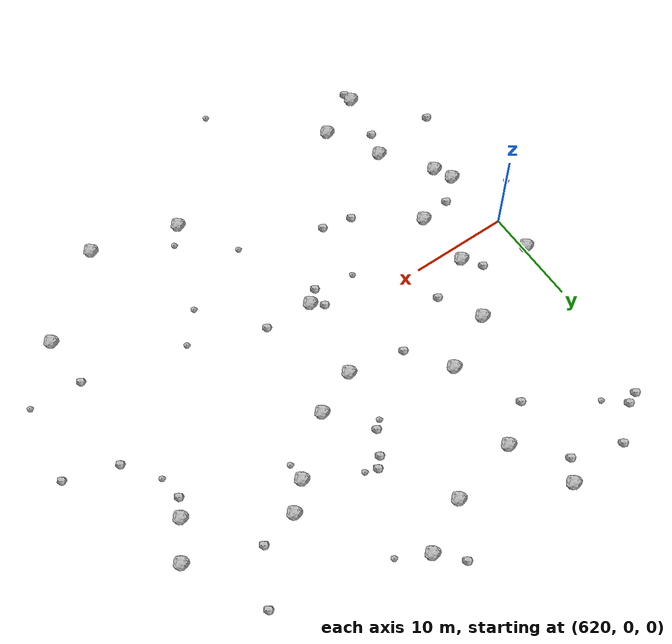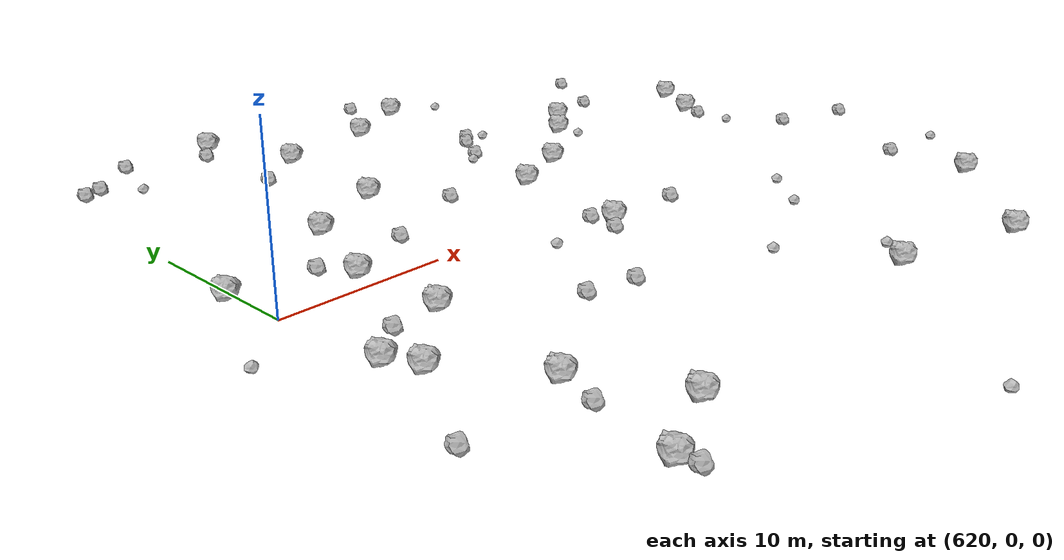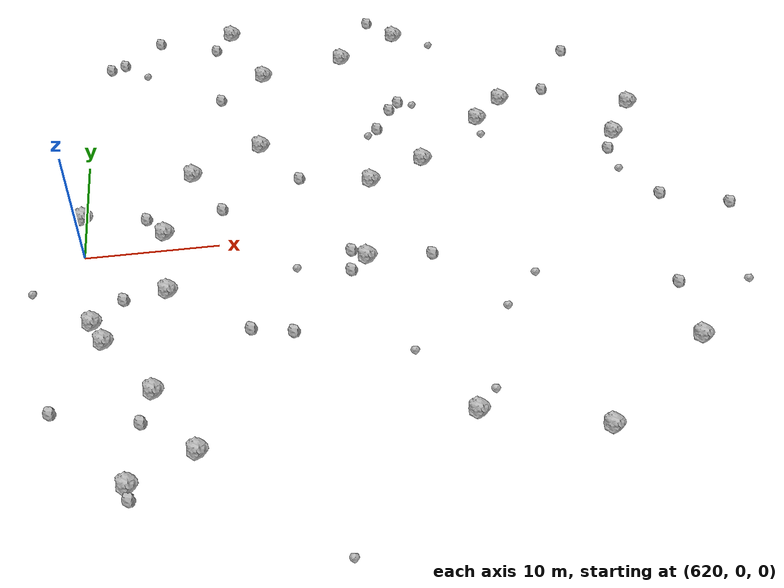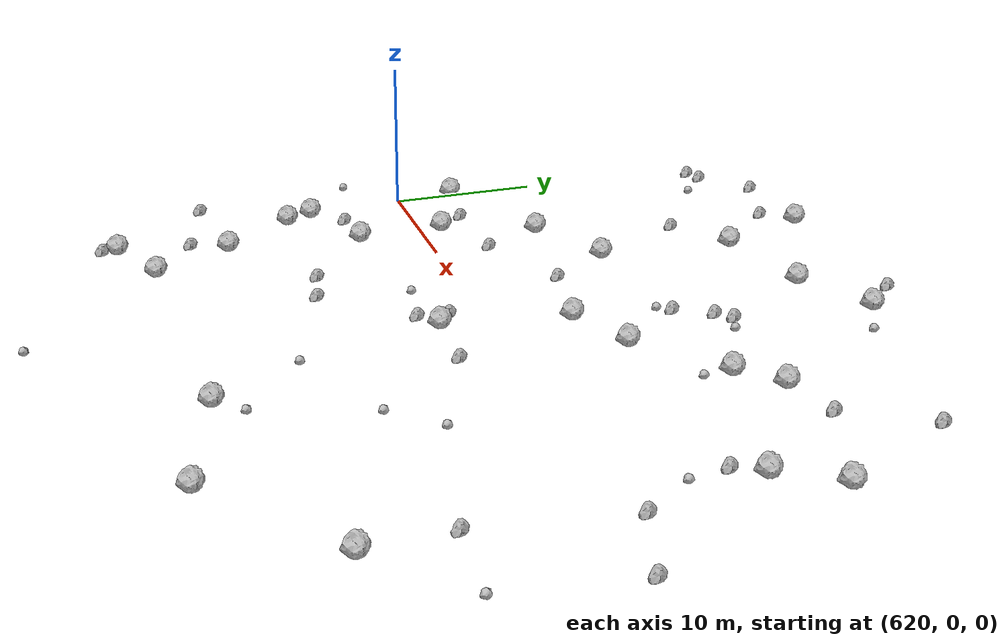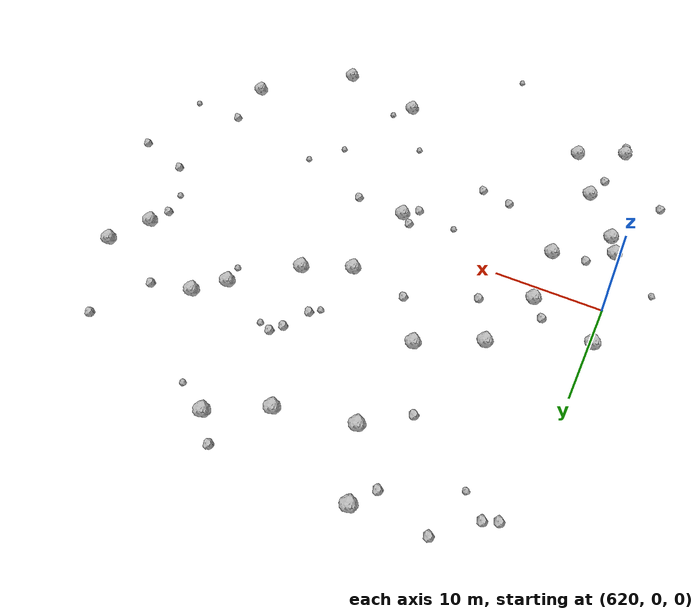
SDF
<sdf version="1.6">
 <world name="default">
  <include><uri>model://sun</uri></include>
  <model name="rock1_16_3">
   <include><uri>model://rock1</uri><pose>625.1103509072245 -13.36444925553955 0.5 0 0 0</pose></include>
  </model>
  <model name="rock1_16_4">
   <include><uri>model://rock1</uri><pose>640.9253970143335 -2.9047556209118213 0.5 0 0 0</pose></include>
  </model>
  <model name="rock1_16_5">
   <include><uri>model://rock1</uri><pose>655.2461351588942 -20.250533716743423 0.5 0 0 0</pose></include>
  </model>
  <model name="rock1_16_6">
   <include><uri>model://rock1</uri><pose>625.9587576814057 1.5300904607587356 0.5 0 0 0</pose></include>
  </model>
  <model name="rock1_16_7">
   <include><uri>model://rock1</uri><pose>654.2550032465101 13.874803052507836 0.5 0 0 0</pose></include>
  </model>
  <model name="rock1_16_8">
   <include><uri>model://rock1</uri><pose>626.1485189122476 -4.364464515201817 0.5 0 0 0</pose></include>
  </model>
  <model name="rock1_16_9">
   <include><uri>model://rock1</uri><pose>628.2232149535462 7.759789723071933 0.5 0 0 0</pose></include>
  </model>
  <model name="rock1_16_10">
   <include><uri>model://rock1</uri><pose>619.7897727081322 4.0099027345909874 0.5 0 0 0</pose></include>
  </model>
  <model name="rock1_16_11">
   <include><uri>model://rock1</uri><pose>627.9472147000679 -18.61828874040043 0.5 0 0 0</pose></include>
  </model>
  <model name="rock1_16_12">
   <include><uri>model://rock1</uri><pose>621.6370322811741 -8.581672207020588 0.5 0 0 0</pose></include>
  </model>
  <model name="rock1_16_13">
   <include><uri>model://rock1</uri><pose>623.4592270905811 -20.67163459825554 0.5 0 0 0</pose></include>
  </model>
  <model name="rock1_16_14">
   <include><uri>model://rock1</uri><pose>632.1091126777515 25.946968057770675 0.5 0 0 0</pose></include>
  </model>
  <model name="rock1_16_15">
   <include><uri>model://rock1</uri><pose>646.6191294440729 7.229351728325419 0.5 0 0 0</pose></include>
  </model>
  <model name="rock1_16_16">
   <include><uri>model://rock1</uri><pose>634.5627370733133 19.674406580935667 0.5 0 0 0</pose></include>
  </model>
  <model name="rock1_16_17">
   <include><uri>model://rock1</uri><pose>633.7722213304628 10.53192345203069 0.5 0 0 0</pose></include>
  </model>
  <model name="rock1_16_18">
   <include><uri>model://rock1</uri><pose>646.6252726317123 -17.86716204073536 0.5 0 0 0</pose></include>
  </model>
  <model name="rock1_16_19">
   <include><uri>model://rock1</uri><pose>651.886034967341 11.596169277008777 0.5 0 0 0</pose></include>
  </model>
  <model name="rock1_16_20">
   <include><uri>model://rock1</uri><pose>663.4348696230376 -13.619997011532313 0.5 0 0 0</pose></include>
  </model>
  <model name="rock1_16_21">
   <include><uri>model://rock1</uri><pose>620.7889866083271 -6.738811945876655 0.5 0 0 0</pose></include>
  </model>
  <model name="rock1_16_22">
   <include><uri>model://rock1</uri><pose>662.7437085074133 8.412276965848015 0.5 0 0 0</pose></include>
  </model>
  <model name="rock1_16_23">
   <include><uri>model://rock1</uri><pose>664.9336691996052 12.019938864712103 0.5 0 0 0</pose></include>
  </model>
  <model name="rock1_16_24">
   <include><uri>model://rock1</uri><pose>641.4960035841418 21.22421312434855 0.5 0 0 0</pose></include>
  </model>
  <model name="rock1_16_25">
   <include><uri>model://rock1</uri><pose>646.4713290625882 23.904760617796434 0.5 0 0 0</pose></include>
  </model>
  <model name="rock1_16_26">
   <include><uri>model://rock1</uri><pose>642.1982497713243 5.304300780743347 0.5 0 0 0</pose></include>
  </model>
  <model name="rock2_16_0">
   <include><uri>model://rock2</uri><pose>618.2362898141513 -14.289830519469929 0.3 0 0 0</pose></include>
  </model>
  <model name="rock2_16_1">
   <include><uri>model://rock2</uri><pose>664.4949229873083 0.916439700294081 0.3 0 0 0</pose></include>
  </model>
  <model name="rock2_16_2">
   <include><uri>model://rock2</uri><pose>644.3260910874609 26.206390602503767 0.3 0 0 0</pose></include>
  </model>
  <model name="rock2_16_3">
   <include><uri>model://rock2</uri><pose>645.7709891114016 -3.131942064258311 0.3 0 0 0</pose></include>
  </model>
  <model name="rock2_16_4">
   <include><uri>model://rock2</uri><pose>621.5036257337276 22.346083849002753 0.3 0 0 0</pose></include>
  </model>
  <model name="rock2_16_5">
   <include><uri>model://rock2</uri><pose>624.2477991267891 -15.832165174774552 0.3 0 0 0</pose></include>
  </model>
  <model name="rock2_16_6">
   <include><uri>model://rock2</uri><pose>625.7766821291488 25.56820461818591 0.3 0 0 0</pose></include>
  </model>
  <model name="rock2_16_7">
   <include><uri>model://rock2</uri><pose>634.9306409199326 -9.334959433319163 0.3 0 0 0</pose></include>
  </model>
  <model name="rock2_16_8">
   <include><uri>model://rock2</uri><pose>660.9789195670495 19.838068111387663 0.3 0 0 0</pose></include>
  </model>
  <model name="rock2_16_9">
   <include><uri>model://rock2</uri><pose>643.4301874887857 11.484993486153606 0.3 0 0 0</pose></include>
  </model>
  <model name="rock2_16_10">
   <include><uri>model://rock2</uri><pose>631.9401312340352 -8.681850757854189 0.3 0 0 0</pose></include>
  </model>
  <model name="rock2_16_11">
   <include><uri>model://rock2</uri><pose>630.8136804949921 16.929146716560737 0.3 0 0 0</pose></include>
  </model>
  <model name="rock2_16_12">
   <include><uri>model://rock2</uri><pose>636.5717115574253 6.368822495382297 0.3 0 0 0</pose></include>
  </model>
  <model name="rock2_16_13">
   <include><uri>model://rock2</uri><pose>639.8149438192521 -2.0118547096572215 0.3 0 0 0</pose></include>
  </model>
  <model name="rock2_16_14">
   <include><uri>model://rock2</uri><pose>639.5989135693817 -4.0061284263634604 0.3 0 0 0</pose></include>
  </model>
  <model name="rock2_16_15">
   <include><uri>model://rock2</uri><pose>622.9705115402429 -4.753475288799301 0.3 0 0 0</pose></include>
  </model>
  <model name="rock2_16_16">
   <include><uri>model://rock2</uri><pose>658.0740314900612 14.778361182729789 0.3 0 0 0</pose></include>
  </model>
  <model name="rock2_16_17">
   <include><uri>model://rock2</uri><pose>630.3935210928717 3.6294551489957385 0.3 0 0 0</pose></include>
  </model>
  <model name="rock2_16_18">
   <include><uri>model://rock2</uri><pose>661.8110802522498 6.6387207328955 0.3 0 0 0</pose></include>
  </model>
  <model name="rock2_16_19">
   <include><uri>model://rock2</uri><pose>622.6704748593215 22.817989705913163 0.3 0 0 0</pose></include>
  </model>
  <model name="rock2_16_20">
   <include><uri>model://rock2</uri><pose>669.6284590922439 -0.7629915310605604 0.3 0 0 0</pose></include>
  </model>
  <model name="rock2_16_21">
   <include><uri>model://rock2</uri><pose>630.6637718004395 23.93606346501432 0.3 0 0 0</pose></include>
  </model>
  <model name="rock2_16_22">
   <include><uri>model://rock2</uri><pose>663.2263225018592 -8.382977841752286 0.3 0 0 0</pose></include>
  </model>
  <model name="rock2_16_23">
   <include><uri>model://rock2</uri><pose>624.5876730103685 3.3172420554166138 0.3 0 0 0</pose></include>
  </model>
  <model name="rock2_16_24">
   <include><uri>model://rock2</uri><pose>644.7468555111701 13.780041964150229 0.3 0 0 0</pose></include>
  </model>
  <model name="rock2_16_25">
   <include><uri>model://rock2</uri><pose>623.5560977169224 -21.69434247624045 0.3 0 0 0</pose></include>
  </model>
  <model name="rock2_16_26">
   <include><uri>model://rock2</uri><pose>645.6024414727245 14.693686233792526 0.3 0 0 0</pose></include>
  </model>
  <model name="rock3_16_0">
   <include><uri>model://rock3</uri><pose>643.1525249032717 -12.159633793970112 0.2 0 0 0</pose></include>
  </model>
  <model name="rock3_16_1">
   <include><uri>model://rock3</uri><pose>648.0874733982324 -16.193651780181867 0.2 0 0 0</pose></include>
  </model>
  <model name="rock3_16_2">
   <include><uri>model://rock3</uri><pose>646.7506834792733 14.231789702359293 0.2 0 0 0</pose></include>
  </model>
  <model name="rock3_16_3">
   <include><uri>model://rock3</uri><pose>653.0204083581145 -6.0261027296255705 0.2 0 0 0</pose></include>
  </model>
  <model name="rock3_16_4">
   <include><uri>model://rock3</uri><pose>616.3780351628292 -3.3327504864183553 0.2 0 0 0</pose></include>
  </model>
  <model name="rock3_16_5">
   <include><uri>model://rock3</uri><pose>624.5864114530037 21.084016547827538 0.2 0 0 0</pose></include>
  </model>
  <model name="rock3_16_6">
   <include><uri>model://rock3</uri><pose>637.137275185678 -27.605391388133466 0.2 0 0 0</pose></include>
  </model>
  <model name="rock3_16_7">
   <include><uri>model://rock3</uri><pose>650.3809542174668 -8.935583990497122 0.2 0 0 0</pose></include>
  </model>
  <model name="rock3_16_8">
   <include><uri>model://rock3</uri><pose>635.6218868096493 -3.302815599045857 0.2 0 0 0</pose></include>
  </model>
  <model name="rock3_16_9">
   <include><uri>model://rock3</uri><pose>668.4516383010174 -8.750713377938403 0.2 0 0 0</pose></include>
  </model>
  <model name="rock3_16_10">
   <include><uri>model://rock3</uri><pose>651.8754602185635 9.767637013038211 0.2 0 0 0</pose></include>
  </model>
  <model name="rock3_16_11">
   <include><uri>model://rock3</uri><pose>642.6106568439973 10.762062799343923 0.2 0 0 0</pose></include>
  </model>
  <model name="rock3_16_12">
   <include><uri>model://rock3</uri><pose>662.0906050605962 4.184986763916989 0.2 0 0 0</pose></include>
  </model>
  <model name="rock3_16_13">
   <include><uri>model://rock3</uri><pose>649.3969194387472 22.28175185156058 0.2 0 0 0</pose></include>
  </model>
 </world>
</sdf>
